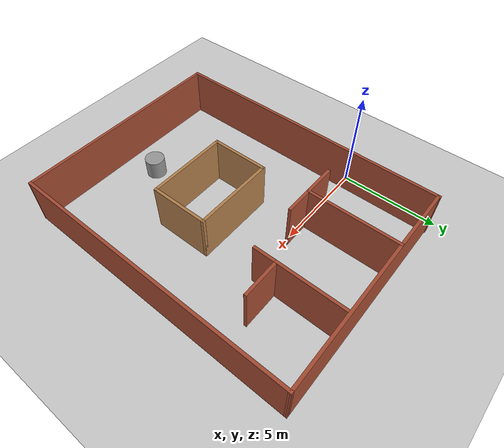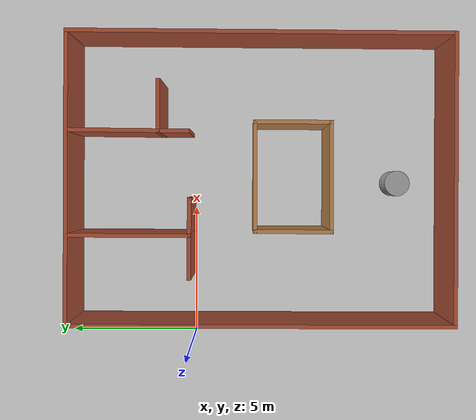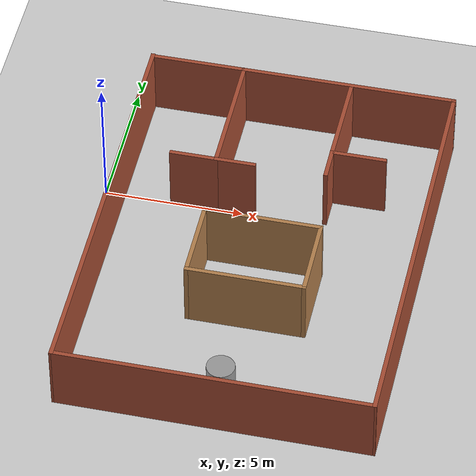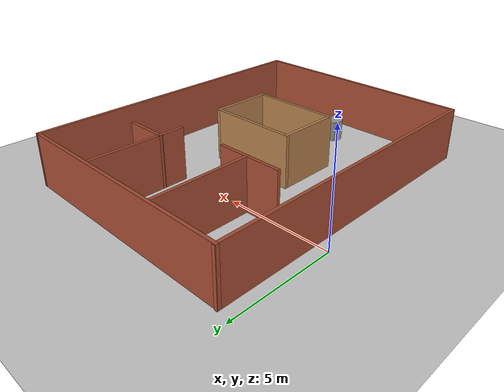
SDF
<sdf version="1.7">
 <world name="default">
  <light name="sun" type="directional">
   <pose>0 0 10 0 -0 0</pose>
   <diffuse>0.8 0.8 0.8 1</diffuse>
   <specular>0.2 0.2 0.2 1</specular>
   <attenuation>
    <range>1000</range>
    <constant>0.9</constant>
    <linear>0.01</linear>
    <quadratic>0.001</quadratic>
   </attenuation>
   <direction>-0.5 0.1 -0.9</direction>
   <spot><inner_angle>0</inner_angle><outer_angle>0</outer_angle><falloff>0</falloff></spot>
  </light>
  <model name="ground_plane">
   <static>1</static>
   <link name="link">
    <collision name="collision">
     <geometry><plane><normal>0 0 1</normal><size>100 100</size></plane></geometry>
     <surface>
      <contact><collide_bitmask>65535</collide_bitmask></contact>
      <friction><ode><mu>100</mu><mu2>50</mu2></ode></friction>
     </surface>
    </collision>
    <visual name="visual">
     <cast_shadows>0</cast_shadows>
     <geometry><plane><normal>0 0 1</normal><size>100 100</size></plane></geometry>
     <material>
      <script><uri>file://media/materials/scripts/gazebo.material</uri><name>Gazebo/Grey</name></script>
     </material>
    </visual>
   </link>
  </model>
  <gravity>0 0 -9.8</gravity>
  <magnetic_field>6e-06 2.3e-05 -4.2e-05</magnetic_field>
  <atmosphere type="adiabatic"/>
  <physics type="ode">
   <max_step_size>0.001</max_step_size>
   <real_time_factor>1</real_time_factor>
   <real_time_update_rate>1000</real_time_update_rate>
  </physics>
  <scene><ambient>0.4 0.4 0.4 1</ambient><background>0.7 0.7 0.7 1</background><shadows>1</shadows></scene>
  <spherical_coordinates>
   <surface_model>EARTH_WGS84</surface_model>
   <latitude_deg>0</latitude_deg>
   <longitude_deg>0</longitude_deg>
   <elevation>0</elevation>
   <heading_deg>0</heading_deg>
  </spherical_coordinates>
  <model name="Untitled">
   <pose>5.88396 -2.55035 0 0 -0 0</pose>
   <link name="Wall_0">
    <collision name="Wall_0_Collision">
     <geometry><box><size>14.75 0.15 2.5</size></box></geometry>
     <pose>0 0 1.25 0 -0 0</pose>
    </collision>
    <visual name="Wall_0_Visual">
     <pose>0 0 1.25 0 -0 0</pose>
     <geometry><box><size>14.75 0.15 2.5</size></box></geometry>
     <material>
      <script><uri>file://media/materials/scripts/gazebo.material</uri><name>Gazebo/Bricks</name></script>
      <ambient>1 1 1 1</ambient>
     </material>
     <meta><layer>0</layer></meta>
    </visual>
    <pose>-5.24082 0.009685 0 0 -0 -1.5708</pose>
   </link>
   <link name="Wall_1">
    <collision name="Wall_1_Collision">
     <geometry><box><size>11.1212 0.15 2.5</size></box></geometry>
     <pose>0 0 1.25 0 -0 0</pose>
    </collision>
    <visual name="Wall_1_Visual">
     <pose>0 0 1.25 0 -0 0</pose>
     <geometry><box><size>11.1212 0.15 2.5</size></box></geometry>
     <material>
      <script><uri>file://media/materials/scripts/gazebo.material</uri><name>Gazebo/Bricks</name></script>
      <ambient>1 1 1 1</ambient>
     </material>
     <meta><layer>0</layer></meta>
    </visual>
    <pose>0.244778 -7.2998 0 0 -0 -0.001729</pose>
   </link>
   <link name="Wall_10">
    <collision name="Wall_10_Collision">
     <geometry><box><size>3.45372 0.15 2.5</size></box></geometry>
     <pose>0 0 1.25 0 -0 0</pose>
    </collision>
    <visual name="Wall_10_Visual">
     <pose>0 0 1.25 0 -0 0</pose>
     <geometry><box><size>3.45372 0.15 2.5</size></box></geometry>
     <material>
      <script><uri>file://media/materials/scripts/gazebo.material</uri><name>Gazebo/Bricks</name></script>
      <ambient>1 1 1 1</ambient>
     </material>
     <meta><layer>0</layer></meta>
    </visual>
    <pose>2.07659 5.48831 0 0 -0 -1.58006</pose>
   </link>
   <link name="Wall_13">
    <collision name="Wall_13_Collision">
     <geometry><box><size>3 0.15 2.5</size></box></geometry>
     <pose>0 0 1.25 0 -0 0</pose>
    </collision>
    <visual name="Wall_13_Visual">
     <pose>0 0 1.25 0 -0 0</pose>
     <geometry><box><size>3 0.15 2.5</size></box></geometry>
     <material>
      <script><uri>file://media/materials/scripts/gazebo.material</uri><name>Gazebo/Wood</name></script>
      <ambient>1 1 1 1</ambient>
     </material>
     <meta><layer>0</layer></meta>
    </visual>
    <pose>-1.70131 -1.22889 0 0 -0 -1.5708</pose>
   </link>
   <link name="Wall_14">
    <collision name="Wall_14_Collision">
     <geometry><box><size>4.25 0.15 2.5</size></box></geometry>
     <pose>0 0 1.25 0 -0 0</pose>
    </collision>
    <visual name="Wall_14_Visual">
     <pose>0 0 1.25 0 -0 0</pose>
     <geometry><box><size>4.25 0.15 2.5</size></box></geometry>
     <material>
      <script><uri>file://media/materials/scripts/gazebo.material</uri><name>Gazebo/Wood</name></script>
      <ambient>1 1 1 1</ambient>
     </material>
     <meta><layer>0</layer></meta>
    </visual>
    <pose>0.348694 -2.65388 0 0 -0 0</pose>
   </link>
   <link name="Wall_15">
    <collision name="Wall_15_Collision">
     <geometry><box><size>3 0.15 2.5</size></box></geometry>
     <pose>0 0 1.25 0 -0 0</pose>
    </collision>
    <visual name="Wall_15_Visual">
     <pose>0 0 1.25 0 -0 0</pose>
     <geometry><box><size>3 0.15 2.5</size></box></geometry>
     <material>
      <script><uri>file://media/materials/scripts/gazebo.material</uri><name>Gazebo/Wood</name></script>
      <ambient>1 1 1 1</ambient>
     </material>
     <meta><layer>0</layer></meta>
    </visual>
    <pose>2.39869 -1.22889 0 0 -0 1.5708</pose>
   </link>
   <link name="Wall_16">
    <collision name="Wall_16_Collision">
     <geometry><box><size>4.25 0.15 2.5</size></box></geometry>
     <pose>0 0 1.25 0 -0 0</pose>
    </collision>
    <visual name="Wall_16_Visual">
     <pose>0 0 1.25 0 -0 0</pose>
     <geometry><box><size>4.25 0.15 2.5</size></box></geometry>
     <material>
      <script><uri>file://media/materials/scripts/gazebo.material</uri><name>Gazebo/Wood</name></script>
      <ambient>1 1 1 1</ambient>
     </material>
     <meta><layer>0</layer></meta>
    </visual>
    <pose>0.348694 0.196115 0 0 -0 3.14159</pose>
   </link>
   <link name="Wall_18">
    <collision name="Wall_18_Collision">
     <geometry><box><size>2.03159 0.15 2.5</size></box></geometry>
     <pose>0 0 1.25 0 -0 0</pose>
    </collision>
    <visual name="Wall_18_Visual">
     <pose>0 0 1.25 0 -0 0</pose>
     <geometry><box><size>2.03159 0.15 2.5</size></box></geometry>
     <material>
      <script><uri>file://media/materials/scripts/gazebo.material</uri><name>Gazebo/Bricks</name></script>
      <ambient>1 1 1 1</ambient>
     </material>
     <meta><layer>0</layer></meta>
    </visual>
    <pose>3.00159 3.83652 0 0 -0 0</pose>
   </link>
   <link name="Wall_2">
    <collision name="Wall_2_Collision">
     <geometry><box><size>14.7386 0.15 2.5</size></box></geometry>
     <pose>0 0 1.25 0 -0 0</pose>
    </collision>
    <visual name="Wall_2_Visual">
     <pose>0 0 1.25 0 -0 0</pose>
     <geometry><box><size>14.7386 0.15 2.5</size></box></geometry>
     <material>
      <script><uri>file://media/materials/scripts/gazebo.material</uri><name>Gazebo/Bricks</name></script>
      <ambient>1 1 1 1</ambient>
     </material>
     <meta><layer>0</layer></meta>
    </visual>
    <pose>5.76947 -0.015095 0 0 -0 1.56544</pose>
   </link>
   <link name="Wall_20">
    <collision name="Wall_20_Collision">
     <geometry><box><size>1.25 0.15 2.5</size></box></geometry>
     <pose>0 0 1.25 0 -0 0</pose>
    </collision>
    <visual name="Wall_20_Visual">
     <pose>0 0 1.25 0 -0 0</pose>
     <geometry><box><size>1.25 0.15 2.5</size></box></geometry>
     <material>
      <script><uri>file://media/materials/scripts/gazebo.material</uri><name>Gazebo/Bricks</name></script>
      <ambient>1 1 1 1</ambient>
     </material>
     <meta><layer>0</layer></meta>
    </visual>
    <pose>2.06129 3.28652 0 0 -0 -1.5708</pose>
   </link>
   <link name="Wall_3">
    <collision name="Wall_3_Collision">
     <geometry><box><size>11.1994 0.15 2.5</size></box></geometry>
     <pose>0 0 1.25 0 -0 0</pose>
    </collision>
    <visual name="Wall_3_Visual">
     <pose>0 0 1.25 0 -0 0</pose>
     <geometry><box><size>11.1994 0.15 2.5</size></box></geometry>
     <material>
      <script><uri>file://media/materials/scripts/gazebo.material</uri><name>Gazebo/Bricks</name></script>
      <ambient>1 1 1 1</ambient>
     </material>
     <meta><layer>0</layer></meta>
    </visual>
    <pose>0.28387 7.27909 0 0 -0 3.14159</pose>
   </link>
   <link name="Wall_5">
    <collision name="Wall_5_Collision">
     <geometry><box><size>4.75 0.15 2.5</size></box></geometry>
     <pose>0 0 1.25 0 -0 0</pose>
    </collision>
    <visual name="Wall_5_Visual">
     <pose>0 0 1.25 0 -0 0</pose>
     <geometry><box><size>4.75 0.15 2.5</size></box></geometry>
     <material>
      <script><uri>file://media/materials/scripts/gazebo.material</uri><name>Gazebo/Bricks</name></script>
      <ambient>1 1 1 1</ambient>
     </material>
     <meta><layer>0</layer></meta>
    </visual>
    <pose>-1.85426 4.96246 0 0 -0 -1.5708</pose>
   </link>
   <link name="Wall_6">
    <collision name="Wall_6_Collision">
     <geometry><box><size>1.75 0.15 2.5</size></box></geometry>
     <pose>0 0 1.25 0 -0 0</pose>
    </collision>
    <visual name="Wall_6_Visual">
     <pose>0 0 1.25 0 -0 0</pose>
     <geometry><box><size>1.75 0.15 2.5</size></box></geometry>
     <material>
      <script><uri>file://media/materials/scripts/gazebo.material</uri><name>Gazebo/Bricks</name></script>
      <ambient>1 1 1 1</ambient>
     </material>
     <meta><layer>0</layer></meta>
    </visual>
    <pose>-2.65426 2.66246 0 0 -0 3.14159</pose>
   </link>
   <link name="Wall_8">
    <collision name="Wall_8_Collision">
     <geometry><box><size>1.5 0.15 2.5</size></box></geometry>
     <pose>0 0 1.25 0 -0 0</pose>
    </collision>
    <visual name="Wall_8_Visual">
     <pose>0 0 1.25 0 -0 0</pose>
     <geometry><box><size>1.5 0.15 2.5</size></box></geometry>
     <material>
      <script><uri>file://media/materials/scripts/gazebo.material</uri><name>Gazebo/Bricks</name></script>
      <ambient>1 1 1 1</ambient>
     </material>
     <meta><layer>0</layer></meta>
    </visual>
    <pose>-1.17926 2.66246 0 0 -0 0</pose>
   </link>
   <static>1</static>
  </model>
  <model name="unit_cylinder">
   <pose>6 -8 0.499992 -3e-06 -4e-06 -0</pose>
   <link name="link">
    <inertial>
     <mass>1</mass>
     <inertia><ixx>0.145833</ixx><ixy>0</ixy><ixz>0</ixz><iyy>0.145833</iyy><iyz>0</iyz><izz>0.125</izz></inertia>
    </inertial>
    <collision name="collision">
     <geometry><cylinder><radius>0.5</radius><length>1</length></cylinder></geometry>
    </collision>
    <visual name="visual">
     <geometry><cylinder><radius>0.5</radius><length>1</length></cylinder></geometry>
     <material>
      <script><name>Gazebo/Grey</name><uri>file://media/materials/scripts/gazebo.material</uri></script>
     </material>
    </visual>
   </link>
  </model>
 </world>
</sdf>
